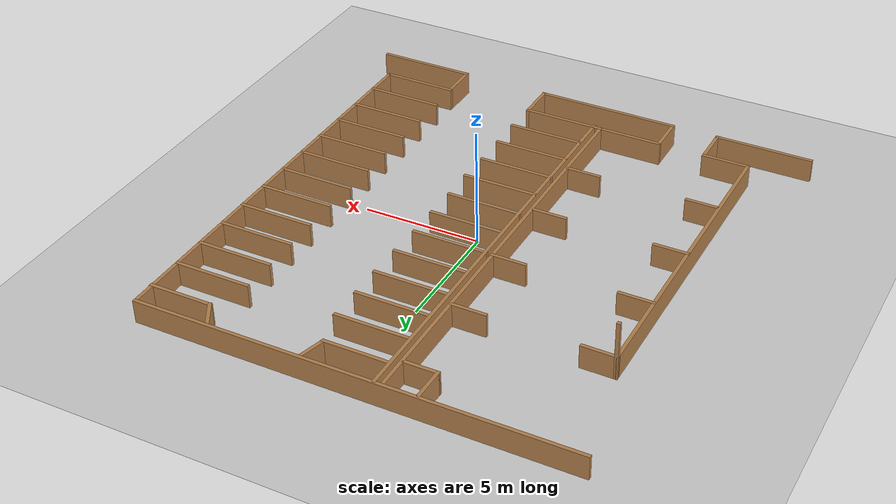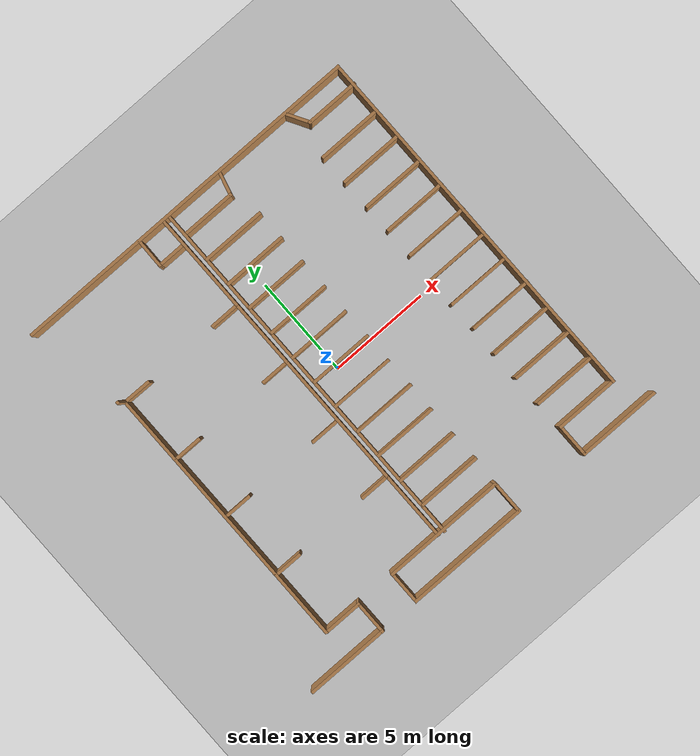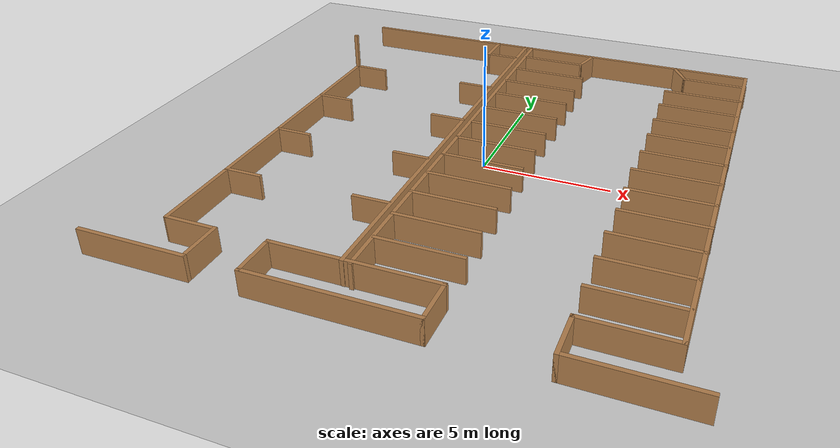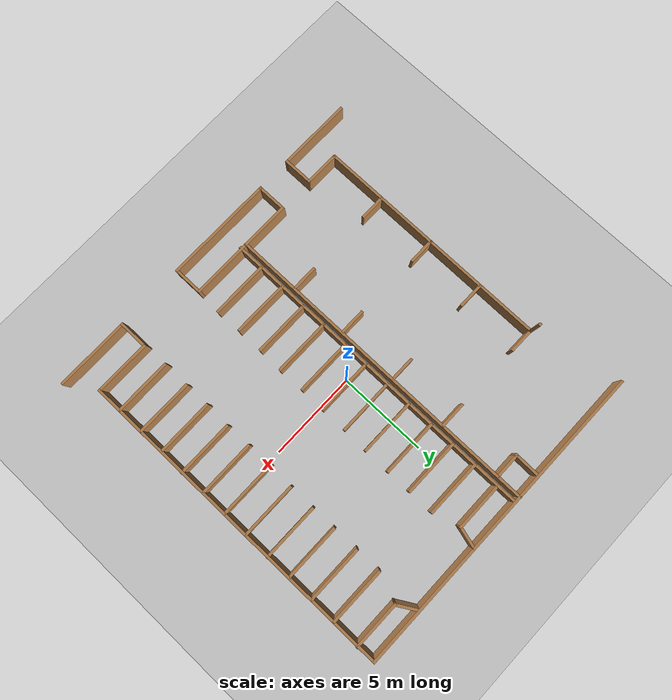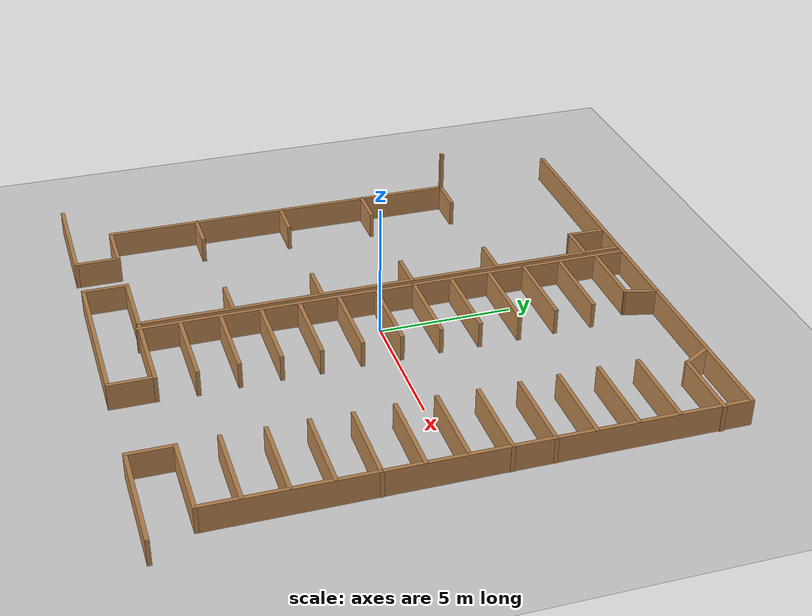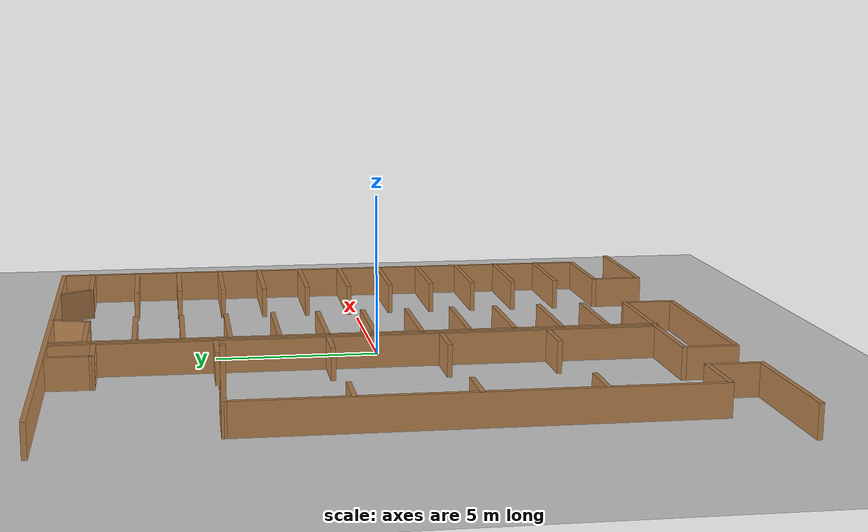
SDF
<sdf version='1.6'>
  <world name='default'>
    <light name='sun' type='directional'>
      <cast_shadows>1</cast_shadows>
      <pose frame=''>0 0 10 0 -0 0</pose>
      <diffuse>0.8 0.8 0.8 1</diffuse>
      <specular>0.1 0.1 0.1 1</specular>
      <attenuation>
        <range>1000</range>
        <constant>0.9</constant>
        <linear>0.01</linear>
        <quadratic>0.001</quadratic>
      </attenuation>
      <direction>-0.5 0.5 -1</direction>
    </light>
    <model name='ground_plane'>
      <static>1</static>
      <link name='link'>
        <collision name='collision'>
          <geometry>
            <plane>
              <normal>0 0 1</normal>
              <size>100 100</size>
            </plane>
          </geometry>
          <surface>
            <friction>
              <ode>
                <mu>100</mu>
                <mu2>50</mu2>
              </ode>
            </friction>
            <bounce/>
            <contact>
              <ode/>
            </contact>
          </surface>
          <max_contacts>10</max_contacts>
        </collision>
        <visual name='visual'>
          <cast_shadows>0</cast_shadows>
          <geometry>
            <plane>
              <normal>0 0 1</normal>
              <size>25 25</size>
            </plane>
          </geometry>
          <material>
            <script>
              <uri>file://media/materials/scripts/gazebo.material</uri>
              <name>Gazebo/Grey</name>
            </script>
          </material>
        </visual>
        <velocity_decay>
          <linear>0</linear>
          <angular>0</angular>
        </velocity_decay>
        <self_collide>0</self_collide>
        <kinematic>0</kinematic>
        <gravity>1</gravity>
      </link>
      <link name='camera_link'>
				<pose>0 0 20 0 1.57 1.57</pose> <!-- camera placed at a heigth of 16 feet-->
				<inertial>
					<mass>0.1</mass>
					<inertia>
						<ixx>1</ixx>
						<ixy>0</ixy>
						<ixz>0</ixz>
						<iyy>1</iyy>
						<iyz>0</iyz>
						<izz>1</izz>
					</inertia>
				</inertial>
				<collision name='collision'>
					<geometry>
						<box>
							<size>0.001 0.001 0.001</size>
						</box>
					</geometry>
					<max_contacts>10</max_contacts>
					<surface>
						<bounce/>
						<friction>
							<ode/>
						</friction>
						<contact>
							<ode/>
						</contact>
					</surface>
				</collision>
				<visual name='visual'>
					<geometry>
						<box>
							<size>0.001 0.001 0.001</size>
						</box>
					</geometry>
				</visual>
				<sensor type='camera' name='camera'>
					<camera name='overhead_cam'>
						<horizontal_fov>1.0</horizontal_fov>
						<image>
							<width>1280</width>
							<height>1280</height>
						</image>
						<clip>
							<near>0.1</near>
							<far>25</far>
						</clip>

					</camera>

					<plugin name='camera_control' filename='libgazebo_ros_camera.so'>
						<alwaysOn>true</alwaysOn>
						<updateRate>0</updateRate>
						<cameraName>gazebo/overhead_cam</cameraName>
						<imageTopicName>overhead_image</imageTopicName>
						<cameraInfoTopicName>camera_info</cameraInfoTopicName>
						<frameName>overhead_cam_frame</frameName>
					</plugin>
					<always_on>1</always_on>
					<update_rate>30</update_rate>
					<visualize>0</visualize>

				</sensor>

				<gravity>1</gravity>
			</link>
    </model>
    <model name='Parking_Lot_Final'>
      <pose frame=''>-0.2395 -0.024499 0 0 -0 0</pose>
      <link name='Wall_0'>
        <collision name='Wall_0_Collision'>
          <geometry>
            <box>
              <size>18.25 0.15 1</size>
            </box>
          </geometry>
          <pose frame=''>0 0 0.5 0 -0 0</pose>
        </collision>
        <visual name='Wall_0_Visual'>
          <pose frame=''>0 0 0.5 0 -0 0</pose>
          <geometry>
            <box>
              <size>18.25 0.15 1</size>
            </box>
          </geometry>
          <material>
            <script>
              <uri>file://media/materials/scripts/gazebo.material</uri>
              <name>Gazebo/Wood</name>
            </script>
            <ambient>1 1 1 1</ambient>
          </material>
        </visual>
        <pose frame=''>0.0365 10.1055 0 0 -0 0</pose>
      </link>
      <link name='Wall_1'>
        <collision name='Wall_1_Collision'>
          <geometry>
            <box>
              <size>18.75 0.15 1</size>
            </box>
          </geometry>
          <pose frame=''>0 0 0.5 0 -0 0</pose>
        </collision>
        <visual name='Wall_1_Visual'>
          <pose frame=''>0 0 0.5 0 -0 0</pose>
          <geometry>
            <box>
              <size>18.75 0.15 1</size>
            </box>
          </geometry>
          <material>
            <script>
              <uri>file://media/materials/scripts/gazebo.material</uri>
              <name>Gazebo/Wood</name>
            </script>
            <ambient>1 1 1 1</ambient>
          </material>
        </visual>
        <pose frame=''>9.0865 0.805499 0 0 0 -1.5708</pose>
      </link>
      <link name='Wall_10'>
        <collision name='Wall_10_Collision'>
          <geometry>
            <box>
              <size>4.25 0.15 1</size>
            </box>
          </geometry>
          <pose frame=''>0 0 0.5 0 -0 0</pose>
        </collision>
        <visual name='Wall_10_Visual'>
          <pose frame=''>0 0 0.5 0 -0 0</pose>
          <geometry>
            <box>
              <size>4.25 0.15 1</size>
            </box>
          </geometry>
          <material>
            <script>
              <uri>file://media/materials/scripts/gazebo.material</uri>
              <name>Gazebo/Wood</name>
            </script>
            <ambient>1 1 1 1</ambient>
          </material>
        </visual>
        <pose frame=''>-8.0365 -10.1055 0 0 -0 3.14159</pose>
      </link>
      <link name='Wall_102'>
        <collision name='Wall_102_Collision'>
          <geometry>
            <box>
              <size>2.75 0.15 1</size>
            </box>
          </geometry>
          <pose frame=''>0 0 0.5 0 -0 0</pose>
        </collision>
        <visual name='Wall_102_Visual'>
          <pose frame=''>0 0 0.5 0 -0 0</pose>
          <geometry>
            <box>
              <size>2.75 0.15 1</size>
            </box>
          </geometry>
          <material>
            <script>
              <uri>file://media/materials/scripts/gazebo.material</uri>
              <name>Gazebo/Wood</name>
            </script>
            <ambient>1 1 1 1</ambient>
          </material>
        </visual>
        <pose frame=''>7.8255 9.0675 0 0 -0 0</pose>
      </link>
      <link name='Wall_104'>
        <collision name='Wall_104_Collision'>
          <geometry>
            <box>
              <size>3.25 0.15 1</size>
            </box>
          </geometry>
          <pose frame=''>0 0 0.5 0 -0 0</pose>
        </collision>
        <visual name='Wall_104_Visual'>
          <pose frame=''>0 0 0.5 0 -0 0</pose>
          <geometry>
            <box>
              <size>3.25 0.15 1</size>
            </box>
          </geometry>
          <material>
            <script>
              <uri>file://media/materials/scripts/gazebo.material</uri>
              <name>Gazebo/Wood</name>
            </script>
            <ambient>1 1 1 1</ambient>
          </material>
        </visual>
        <pose frame=''>7.5035 7.5095 0 0 -0 3.14159</pose>
      </link>
      <link name='Wall_108'>
        <collision name='Wall_108_Collision'>
          <geometry>
            <box>
              <size>3.25 0.15 1</size>
            </box>
          </geometry>
          <pose frame=''>0 0 0.5 0 -0 0</pose>
        </collision>
        <visual name='Wall_108_Visual'>
          <pose frame=''>0 0 0.5 0 -0 0</pose>
          <geometry>
            <box>
              <size>3.25 0.15 1</size>
            </box>
          </geometry>
          <material>
            <script>
              <uri>file://media/materials/scripts/gazebo.material</uri>
              <name>Gazebo/Wood</name>
            </script>
            <ambient>1 1 1 1</ambient>
          </material>
        </visual>
        <pose frame=''>7.5085 6.0475 0 0 -0 0</pose>
      </link>
      <link name='Wall_110'>
        <collision name='Wall_110_Collision'>
          <geometry>
            <box>
              <size>3.25 0.15 1</size>
            </box>
          </geometry>
          <pose frame=''>0 0 0.5 0 -0 0</pose>
        </collision>
        <visual name='Wall_110_Visual'>
          <pose frame=''>0 0 0.5 0 -0 0</pose>
          <geometry>
            <box>
              <size>3.25 0.15 1</size>
            </box>
          </geometry>
          <material>
            <script>
              <uri>file://media/materials/scripts/gazebo.material</uri>
              <name>Gazebo/Wood</name>
            </script>
            <ambient>1 1 1 1</ambient>
          </material>
        </visual>
        <pose frame=''>7.5305 4.5715 0 0 -0 0</pose>
      </link>
      <link name='Wall_112'>
        <collision name='Wall_112_Collision'>
          <geometry>
            <box>
              <size>3.25 0.15 1</size>
            </box>
          </geometry>
          <pose frame=''>0 0 0.5 0 -0 0</pose>
        </collision>
        <visual name='Wall_112_Visual'>
          <pose frame=''>0 0 0.5 0 -0 0</pose>
          <geometry>
            <box>
              <size>3.25 0.15 1</size>
            </box>
          </geometry>
          <material>
            <script>
              <uri>file://media/materials/scripts/gazebo.material</uri>
              <name>Gazebo/Wood</name>
            </script>
            <ambient>1 1 1 1</ambient>
          </material>
        </visual>
        <pose frame=''>7.5475 3.1615 0 0 -0 0</pose>
      </link>
      <link name='Wall_114'>
        <collision name='Wall_114_Collision'>
          <geometry>
            <box>
              <size>3.25 0.15 1</size>
            </box>
          </geometry>
          <pose frame=''>0 0 0.5 0 -0 0</pose>
        </collision>
        <visual name='Wall_114_Visual'>
          <pose frame=''>0 0 0.5 0 -0 0</pose>
          <geometry>
            <box>
              <size>3.25 0.15 1</size>
            </box>
          </geometry>
          <material>
            <script>
              <uri>file://media/materials/scripts/gazebo.material</uri>
              <name>Gazebo/Wood</name>
            </script>
            <ambient>1 1 1 1</ambient>
          </material>
        </visual>
        <pose frame=''>7.5475 1.6825 0 0 -0 0</pose>
      </link>
      <link name='Wall_116'>
        <collision name='Wall_116_Collision'>
          <geometry>
            <box>
              <size>3.25 0.15 1</size>
            </box>
          </geometry>
          <pose frame=''>0 0 0.5 0 -0 0</pose>
        </collision>
        <visual name='Wall_116_Visual'>
          <pose frame=''>0 0 0.5 0 -0 0</pose>
          <geometry>
            <box>
              <size>3.25 0.15 1</size>
            </box>
          </geometry>
          <material>
            <script>
              <uri>file://media/materials/scripts/gazebo.material</uri>
              <name>Gazebo/Wood</name>
            </script>
            <ambient>1 1 1 1</ambient>
          </material>
        </visual>
        <pose frame=''>7.4785 0.240499 0 0 -0 0</pose>
      </link>
      <link name='Wall_118'>
        <collision name='Wall_118_Collision'>
          <geometry>
            <box>
              <size>3.25 0.15 1</size>
            </box>
          </geometry>
          <pose frame=''>0 0 0.5 0 -0 0</pose>
        </collision>
        <visual name='Wall_118_Visual'>
          <pose frame=''>0 0 0.5 0 -0 0</pose>
          <geometry>
            <box>
              <size>3.25 0.15 1</size>
            </box>
          </geometry>
          <material>
            <script>
              <uri>file://media/materials/scripts/gazebo.material</uri>
              <name>Gazebo/Wood</name>
            </script>
            <ambient>1 1 1 1</ambient>
          </material>
        </visual>
        <pose frame=''>7.5175 -1.2075 0 0 -0 0</pose>
      </link>
      <link name='Wall_120'>
        <collision name='Wall_120_Collision'>
          <geometry>
            <box>
              <size>3.25 0.15 1</size>
            </box>
          </geometry>
          <pose frame=''>0 0 0.5 0 -0 0</pose>
        </collision>
        <visual name='Wall_120_Visual'>
          <pose frame=''>0 0 0.5 0 -0 0</pose>
          <geometry>
            <box>
              <size>3.25 0.15 1</size>
            </box>
          </geometry>
          <material>
            <script>
              <uri>file://media/materials/scripts/gazebo.material</uri>
              <name>Gazebo/Wood</name>
            </script>
            <ambient>1 1 1 1</ambient>
          </material>
        </visual>
        <pose frame=''>7.5535 -2.6525 0 0 -0 0</pose>
      </link>
      <link name='Wall_122'>
        <collision name='Wall_122_Collision'>
          <geometry>
            <box>
              <size>3.25 0.15 1</size>
            </box>
          </geometry>
          <pose frame=''>0 0 0.5 0 -0 0</pose>
        </collision>
        <visual name='Wall_122_Visual'>
          <pose frame=''>0 0 0.5 0 -0 0</pose>
          <geometry>
            <box>
              <size>3.25 0.15 1</size>
            </box>
          </geometry>
          <material>
            <script>
              <uri>file://media/materials/scripts/gazebo.material</uri>
              <name>Gazebo/Wood</name>
            </script>
            <ambient>1 1 1 1</ambient>
          </material>
        </visual>
        <pose frame=''>7.5015 -4.1085 0 0 -0 0</pose>
      </link>
      <link name='Wall_125'>
        <collision name='Wall_125_Collision'>
          <geometry>
            <box>
              <size>3.25 0.15 1</size>
            </box>
          </geometry>
          <pose frame=''>0 0 0.5 0 -0 0</pose>
        </collision>
        <visual name='Wall_125_Visual'>
          <pose frame=''>0 0 0.5 0 -0 0</pose>
          <geometry>
            <box>
              <size>3.25 0.15 1</size>
            </box>
          </geometry>
          <material>
            <script>
              <uri>file://media/materials/scripts/gazebo.material</uri>
              <name>Gazebo/Wood</name>
            </script>
            <ambient>1 1 1 1</ambient>
          </material>
        </visual>
        <pose frame=''>7.5105 -5.5515 0 0 -0 0</pose>
      </link>
      <link name='Wall_127'>
        <collision name='Wall_127_Collision'>
          <geometry>
            <box>
              <size>3.25 0.15 1</size>
            </box>
          </geometry>
          <pose frame=''>0 0 0.5 0 -0 0</pose>
        </collision>
        <visual name='Wall_127_Visual'>
          <pose frame=''>0 0 0.5 0 -0 0</pose>
          <geometry>
            <box>
              <size>3.25 0.15 1</size>
            </box>
          </geometry>
          <material>
            <script>
              <uri>file://media/materials/scripts/gazebo.material</uri>
              <name>Gazebo/Wood</name>
            </script>
            <ambient>1 1 1 1</ambient>
          </material>
        </visual>
        <pose frame=''>7.4955 -7.0615 0 0 -0 0</pose>
      </link>
      <link name='Wall_129'>
        <collision name='Wall_129_Collision'>
          <geometry>
            <box>
              <size>1.5 0.15 1</size>
            </box>
          </geometry>
          <pose frame=''>0 0 0.5 0 -0 0</pose>
        </collision>
        <visual name='Wall_129_Visual'>
          <pose frame=''>0 0 0.5 0 -0 0</pose>
          <geometry>
            <box>
              <size>1.5 0.15 1</size>
            </box>
          </geometry>
          <material>
            <script>
              <uri>file://media/materials/scripts/gazebo.material</uri>
              <name>Gazebo/Wood</name>
            </script>
            <ambient>1 1 1 1</ambient>
          </material>
        </visual>
        <pose frame=''>-2.694 9.3545 0 0 0 -1.58783</pose>
      </link>
      <link name='Wall_130'>
        <collision name='Wall_130_Collision'>
          <geometry>
            <box>
              <size>1.5 0.15 1</size>
            </box>
          </geometry>
          <pose frame=''>0 0 0.5 0 -0 0</pose>
        </collision>
        <visual name='Wall_130_Visual'>
          <pose frame=''>0 0 0.5 0 -0 0</pose>
          <geometry>
            <box>
              <size>1.5 0.15 1</size>
            </box>
          </geometry>
          <material>
            <script>
              <uri>file://media/materials/scripts/gazebo.material</uri>
              <name>Gazebo/Wood</name>
            </script>
            <ambient>1 1 1 1</ambient>
          </material>
        </visual>
        <pose frame=''>-2.0305 8.6795 0 0 -0 0</pose>
      </link>
      <link name='Wall_18'>
        <collision name='Wall_18_Collision'>
          <geometry>
            <box>
              <size>1.5 0.15 1</size>
            </box>
          </geometry>
          <pose frame=''>0 0 0.5 0 -0 0</pose>
        </collision>
        <visual name='Wall_18_Visual'>
          <pose frame=''>0 0 0.5 0 -0 0</pose>
          <geometry>
            <box>
              <size>1.5 0.15 1</size>
            </box>
          </geometry>
          <material>
            <script>
              <uri>file://media/materials/scripts/gazebo.material</uri>
              <name>Gazebo/Wood</name>
            </script>
            <ambient>1 1 1 1</ambient>
          </material>
        </visual>
        <pose frame=''>-7.1795 1.7075 0 0 -0 0</pose>
      </link>
      <link name='Wall_2'>
        <collision name='Wall_2_Collision'>
          <geometry>
            <box>
              <size>3.25 0.15 1</size>
            </box>
          </geometry>
          <pose frame=''>0 0 0.5 0 -0 0</pose>
        </collision>
        <visual name='Wall_2_Visual'>
          <pose frame=''>0 0 0.5 0 -0 0</pose>
          <geometry>
            <box>
              <size>3.25 0.15 1</size>
            </box>
          </geometry>
          <material>
            <script>
              <uri>file://media/materials/scripts/gazebo.material</uri>
              <name>Gazebo/Wood</name>
            </script>
            <ambient>1 1 1 1</ambient>
          </material>
        </visual>
        <pose frame=''>7.5365 -8.4945 0 0 -0 3.14159</pose>
      </link>
      <link name='Wall_20'>
        <collision name='Wall_20_Collision'>
          <geometry>
            <box>
              <size>1.5 0.15 1</size>
            </box>
          </geometry>
          <pose frame=''>0 0 0.5 0 -0 0</pose>
        </collision>
        <visual name='Wall_20_Visual'>
          <pose frame=''>0 0 0.5 0 -0 0</pose>
          <geometry>
            <box>
              <size>1.5 0.15 1</size>
            </box>
          </geometry>
          <material>
            <script>
              <uri>file://media/materials/scripts/gazebo.material</uri>
              <name>Gazebo/Wood</name>
            </script>
            <ambient>1 1 1 1</ambient>
          </material>
        </visual>
        <pose frame=''>-7.1985 -1.6895 0 0 -0 0</pose>
      </link>
      <link name='Wall_22'>
        <collision name='Wall_22_Collision'>
          <geometry>
            <box>
              <size>1.5 0.15 1</size>
            </box>
          </geometry>
          <pose frame=''>0 0 0.5 0 -0 0</pose>
        </collision>
        <visual name='Wall_22_Visual'>
          <pose frame=''>0 0 0.5 0 -0 0</pose>
          <geometry>
            <box>
              <size>1.5 0.15 1</size>
            </box>
          </geometry>
          <material>
            <script>
              <uri>file://media/materials/scripts/gazebo.material</uri>
              <name>Gazebo/Wood</name>
            </script>
            <ambient>1 1 1 1</ambient>
          </material>
        </visual>
        <pose frame=''>-7.2125 -5.1185 0 0 -0 0</pose>
      </link>
      <link name='Wall_3'>
        <collision name='Wall_3_Collision'>
          <geometry>
            <box>
              <size>1.75 0.15 1</size>
            </box>
          </geometry>
          <pose frame=''>0 0 0.5 0 -0 0</pose>
        </collision>
        <visual name='Wall_3_Visual'>
          <pose frame=''>0 0 0.5 0 -0 0</pose>
          <geometry>
            <box>
              <size>1.75 0.15 1</size>
            </box>
          </geometry>
          <material>
            <script>
              <uri>file://media/materials/scripts/gazebo.material</uri>
              <name>Gazebo/Wood</name>
            </script>
            <ambient>1 1 1 1</ambient>
          </material>
        </visual>
        <pose frame=''>5.9865 -9.2945 0 0 0 -1.5708</pose>
      </link>
      <link name='Wall_35'>
        <collision name='Wall_35_Collision'>
          <geometry>
            <box>
              <size>0.15 0.15 2.5</size>
            </box>
          </geometry>
          <pose frame=''>0 0 1.25 0 -0 0</pose>
        </collision>
        <visual name='Wall_35_Visual'>
          <pose frame=''>0 0 1.25 0 -0 0</pose>
          <geometry>
            <box>
              <size>0.15 0.15 2.5</size>
            </box>
          </geometry>
          <material>
            <script>
              <uri>file://media/materials/scripts/gazebo.material</uri>
              <name>Gazebo/Wood</name>
            </script>
            <ambient>1 1 1 1</ambient>
          </material>
        </visual>
        <pose frame=''>-7.87467 5.11657 0 0 -0 0</pose>
      </link>
      <link name='Wall_37'>
        <collision name='Wall_37_Collision'>
          <geometry>
            <box>
              <size>1.75 0.15 1</size>
            </box>
          </geometry>
          <pose frame=''>0 0 0.5 0 -0 0</pose>
        </collision>
        <visual name='Wall_37_Visual'>
          <pose frame=''>0 0 0.5 0 -0 0</pose>
          <geometry>
            <box>
              <size>1.75 0.15 1</size>
            </box>
          </geometry>
          <material>
            <script>
              <uri>file://media/materials/scripts/gazebo.material</uri>
              <name>Gazebo/Wood</name>
            </script>
            <ambient>1 1 1 1</ambient>
          </material>
        </visual>
        <pose frame=''>-3.9765 -9.2905 0 0 0 -1.5708</pose>
      </link>
      <link name='Wall_38'>
        <collision name='Wall_38_Collision'>
          <geometry>
            <box>
              <size>6.25 0.15 1</size>
            </box>
          </geometry>
          <pose frame=''>0 0 0.5 0 -0 0</pose>
        </collision>
        <visual name='Wall_38_Visual'>
          <pose frame=''>0 0 0.5 0 -0 0</pose>
          <geometry>
            <box>
              <size>6.25 0.15 1</size>
            </box>
          </geometry>
          <material>
            <script>
              <uri>file://media/materials/scripts/gazebo.material</uri>
              <name>Gazebo/Wood</name>
            </script>
            <ambient>1 1 1 1</ambient>
          </material>
        </visual>
        <pose frame=''>-0.9265 -10.0905 0 0 -0 0</pose>
      </link>
      <link name='Wall_4'>
        <collision name='Wall_4_Collision'>
          <geometry>
            <box>
              <size>4.25 0.15 1</size>
            </box>
          </geometry>
          <pose frame=''>0 0 0.5 0 -0 0</pose>
        </collision>
        <visual name='Wall_4_Visual'>
          <pose frame=''>0 0 0.5 0 -0 0</pose>
          <geometry>
            <box>
              <size>4.25 0.15 1</size>
            </box>
          </geometry>
          <material>
            <script>
              <uri>file://media/materials/scripts/gazebo.material</uri>
              <name>Gazebo/Wood</name>
            </script>
            <ambient>1 1 1 1</ambient>
          </material>
        </visual>
        <pose frame=''>8.0365 -10.0945 0 0 -0 0</pose>
      </link>
      <link name='Wall_41'>
        <collision name='Wall_41_Collision'>
          <geometry>
            <box>
              <size>1.75 0.15 1</size>
            </box>
          </geometry>
          <pose frame=''>0 0 0.5 0 -0 0</pose>
        </collision>
        <visual name='Wall_41_Visual'>
          <pose frame=''>0 0 0.5 0 -0 0</pose>
          <geometry>
            <box>
              <size>1.75 0.15 1</size>
            </box>
          </geometry>
          <material>
            <script>
              <uri>file://media/materials/scripts/gazebo.material</uri>
              <name>Gazebo/Wood</name>
            </script>
            <ambient>1 1 1 1</ambient>
          </material>
        </visual>
        <pose frame=''>2.1235 -9.2905 0 0 -0 1.5708</pose>
      </link>
      <link name='Wall_42'>
        <collision name='Wall_42_Collision'>
          <geometry>
            <box>
              <size>6.25 0.15 1</size>
            </box>
          </geometry>
          <pose frame=''>0 0 0.5 0 -0 0</pose>
        </collision>
        <visual name='Wall_42_Visual'>
          <pose frame=''>0 0 0.5 0 -0 0</pose>
          <geometry>
            <box>
              <size>6.25 0.15 1</size>
            </box>
          </geometry>
          <material>
            <script>
              <uri>file://media/materials/scripts/gazebo.material</uri>
              <name>Gazebo/Wood</name>
            </script>
            <ambient>1 1 1 1</ambient>
          </material>
        </visual>
        <pose frame=''>-0.9265 -8.4905 0 0 -0 3.14159</pose>
      </link>
      <link name='Wall_44'>
        <collision name='Wall_44_Collision'>
          <geometry>
            <box>
              <size>1.5 0.15 1</size>
            </box>
          </geometry>
          <pose frame=''>0 0 0.5 0 -0 0</pose>
        </collision>
        <visual name='Wall_44_Visual'>
          <pose frame=''>0 0 0.5 0 -0 0</pose>
          <geometry>
            <box>
              <size>1.5 0.15 1</size>
            </box>
          </geometry>
          <material>
            <script>
              <uri>file://media/materials/scripts/gazebo.material</uri>
              <name>Gazebo/Wood</name>
            </script>
            <ambient>1 1 1 1</ambient>
          </material>
        </visual>
        <pose frame=''>-2.0375 -5.0665 0 0 -0 3.14159</pose>
      </link>
      <link name='Wall_48'>
        <collision name='Wall_48_Collision'>
          <geometry>
            <box>
              <size>1.5 0.15 1</size>
            </box>
          </geometry>
          <pose frame=''>0 0 0.5 0 -0 0</pose>
        </collision>
        <visual name='Wall_48_Visual'>
          <pose frame=''>0 0 0.5 0 -0 0</pose>
          <geometry>
            <box>
              <size>1.5 0.15 1</size>
            </box>
          </geometry>
          <material>
            <script>
              <uri>file://media/materials/scripts/gazebo.material</uri>
              <name>Gazebo/Wood</name>
            </script>
            <ambient>1 1 1 1</ambient>
          </material>
        </visual>
        <pose frame=''>-2.0625 -1.7385 0 0 -0 3.14159</pose>
      </link>
      <link name='Wall_53'>
        <collision name='Wall_53_Collision'>
          <geometry>
            <box>
              <size>1.5 0.15 1</size>
            </box>
          </geometry>
          <pose frame=''>0 0 0.5 0 -0 0</pose>
        </collision>
        <visual name='Wall_53_Visual'>
          <pose frame=''>0 0 0.5 0 -0 0</pose>
          <geometry>
            <box>
              <size>1.5 0.15 1</size>
            </box>
          </geometry>
          <material>
            <script>
              <uri>file://media/materials/scripts/gazebo.material</uri>
              <name>Gazebo/Wood</name>
            </script>
            <ambient>1 1 1 1</ambient>
          </material>
        </visual>
        <pose frame=''>-1.9715 1.7145 0 0 -0 3.14159</pose>
      </link>
      <link name='Wall_60'>
        <collision name='Wall_60_Collision'>
          <geometry>
            <box>
              <size>1.501 0.15 1</size>
            </box>
          </geometry>
          <pose frame=''>0 0 0.5 0 -0 0</pose>
        </collision>
        <visual name='Wall_60_Visual'>
          <pose frame=''>0 0 0.5 0 -0 0</pose>
          <geometry>
            <box>
              <size>1.501 0.15 1</size>
            </box>
          </geometry>
          <material>
            <script>
              <uri>file://media/materials/scripts/gazebo.material</uri>
              <name>Gazebo/Wood</name>
            </script>
            <ambient>1 1 1 1</ambient>
          </material>
        </visual>
        <pose frame=''>-7.21 5.1105 0 0 -0 3.13271</pose>
      </link>
      <link name='Wall_61'>
        <collision name='Wall_61_Collision'>
          <geometry>
            <box>
              <size>13.7532 0.15 1</size>
            </box>
          </geometry>
          <pose frame=''>0 0 0.5 0 -0 0</pose>
        </collision>
        <visual name='Wall_61_Visual'>
          <pose frame=''>0 0 0.5 0 -0 0</pose>
          <geometry>
            <box>
              <size>13.7532 0.15 1</size>
            </box>
          </geometry>
          <material>
            <script>
              <uri>file://media/materials/scripts/gazebo.material</uri>
              <name>Gazebo/Wood</name>
            </script>
            <ambient>1 1 1 1</ambient>
          </material>
        </visual>
        <pose frame=''>-7.8935 -1.685 0 0 0 -1.57197</pose>
      </link>
      <link name='Wall_65'>
        <collision name='Wall_65_Collision'>
          <geometry>
            <box>
              <size>3.25 0.15 1</size>
            </box>
          </geometry>
          <pose frame=''>0 0 0.5 0 -0 0</pose>
        </collision>
        <visual name='Wall_65_Visual'>
          <pose frame=''>0 0 0.5 0 -0 0</pose>
          <geometry>
            <box>
              <size>3.25 0.15 1</size>
            </box>
          </geometry>
          <material>
            <script>
              <uri>file://media/materials/scripts/gazebo.material</uri>
              <name>Gazebo/Wood</name>
            </script>
            <ambient>1 1 1 1</ambient>
          </material>
        </visual>
        <pose frame=''>0.5985 7.4965 0 0 -0 0</pose>
      </link>
      <link name='Wall_67'>
        <collision name='Wall_67_Collision'>
          <geometry>
            <box>
              <size>3.25 0.15 1</size>
            </box>
          </geometry>
          <pose frame=''>0 0 0.5 0 -0 0</pose>
        </collision>
        <visual name='Wall_67_Visual'>
          <pose frame=''>0 0 0.5 0 -0 0</pose>
          <geometry>
            <box>
              <size>3.25 0.15 1</size>
            </box>
          </geometry>
          <material>
            <script>
              <uri>file://media/materials/scripts/gazebo.material</uri>
              <name>Gazebo/Wood</name>
            </script>
            <ambient>1 1 1 1</ambient>
          </material>
        </visual>
        <pose frame=''>0.5985 6.0445 0 0 -0 0</pose>
      </link>
      <link name='Wall_69'>
        <collision name='Wall_69_Collision'>
          <geometry>
            <box>
              <size>3.25 0.15 1</size>
            </box>
          </geometry>
          <pose frame=''>0 0 0.5 0 -0 0</pose>
        </collision>
        <visual name='Wall_69_Visual'>
          <pose frame=''>0 0 0.5 0 -0 0</pose>
          <geometry>
            <box>
              <size>3.25 0.15 1</size>
            </box>
          </geometry>
          <material>
            <script>
              <uri>file://media/materials/scripts/gazebo.material</uri>
              <name>Gazebo/Wood</name>
            </script>
            <ambient>1 1 1 1</ambient>
          </material>
        </visual>
        <pose frame=''>0.6185 4.6325 0 0 -0 0</pose>
      </link>
      <link name='Wall_71'>
        <collision name='Wall_71_Collision'>
          <geometry>
            <box>
              <size>3.25 0.15 1</size>
            </box>
          </geometry>
          <pose frame=''>0 0 0.5 0 -0 0</pose>
        </collision>
        <visual name='Wall_71_Visual'>
          <pose frame=''>0 0 0.5 0 -0 0</pose>
          <geometry>
            <box>
              <size>3.25 0.15 1</size>
            </box>
          </geometry>
          <material>
            <script>
              <uri>file://media/materials/scripts/gazebo.material</uri>
              <name>Gazebo/Wood</name>
            </script>
            <ambient>1 1 1 1</ambient>
          </material>
        </visual>
        <pose frame=''>0.6185 3.1405 0 0 -0 0</pose>
      </link>
      <link name='Wall_73'>
        <collision name='Wall_73_Collision'>
          <geometry>
            <box>
              <size>3.25 0.15 1</size>
            </box>
          </geometry>
          <pose frame=''>0 0 0.5 0 -0 0</pose>
        </collision>
        <visual name='Wall_73_Visual'>
          <pose frame=''>0 0 0.5 0 -0 0</pose>
          <geometry>
            <box>
              <size>3.25 0.15 1</size>
            </box>
          </geometry>
          <material>
            <script>
              <uri>file://media/materials/scripts/gazebo.material</uri>
              <name>Gazebo/Wood</name>
            </script>
            <ambient>1 1 1 1</ambient>
          </material>
        </visual>
        <pose frame=''>0.5785 1.6895 0 0 -0 0</pose>
      </link>
      <link name='Wall_75'>
        <collision name='Wall_75_Collision'>
          <geometry>
            <box>
              <size>3.25 0.15 1</size>
            </box>
          </geometry>
          <pose frame=''>0 0 0.5 0 -0 0</pose>
        </collision>
        <visual name='Wall_75_Visual'>
          <pose frame=''>0 0 0.5 0 -0 0</pose>
          <geometry>
            <box>
              <size>3.25 0.15 1</size>
            </box>
          </geometry>
          <material>
            <script>
              <uri>file://media/materials/scripts/gazebo.material</uri>
              <name>Gazebo/Wood</name>
            </script>
            <ambient>1 1 1 1</ambient>
          </material>
        </visual>
        <pose frame=''>0.5985 0.228499 0 0 -0 0</pose>
      </link>
      <link name='Wall_77'>
        <collision name='Wall_77_Collision'>
          <geometry>
            <box>
              <size>3.25 0.15 1</size>
            </box>
          </geometry>
          <pose frame=''>0 0 0.5 0 -0 0</pose>
        </collision>
        <visual name='Wall_77_Visual'>
          <pose frame=''>0 0 0.5 0 -0 0</pose>
          <geometry>
            <box>
              <size>3.25 0.15 1</size>
            </box>
          </geometry>
          <material>
            <script>
              <uri>file://media/materials/scripts/gazebo.material</uri>
              <name>Gazebo/Wood</name>
            </script>
            <ambient>1 1 1 1</ambient>
          </material>
        </visual>
        <pose frame=''>0.5815 -1.2065 0 0 -0 0</pose>
      </link>
      <link name='Wall_79'>
        <collision name='Wall_79_Collision'>
          <geometry>
            <box>
              <size>3.25 0.15 1</size>
            </box>
          </geometry>
          <pose frame=''>0 0 0.5 0 -0 0</pose>
        </collision>
        <visual name='Wall_79_Visual'>
          <pose frame=''>0 0 0.5 0 -0 0</pose>
          <geometry>
            <box>
              <size>3.25 0.15 1</size>
            </box>
          </geometry>
          <material>
            <script>
              <uri>file://media/materials/scripts/gazebo.material</uri>
              <name>Gazebo/Wood</name>
            </script>
            <ambient>1 1 1 1</ambient>
          </material>
        </visual>
        <pose frame=''>0.6155 -2.6935 0 0 -0 0</pose>
      </link>
      <link name='Wall_8'>
        <collision name='Wall_8_Collision'>
          <geometry>
            <box>
              <size>2 0.15 1</size>
            </box>
          </geometry>
          <pose frame=''>0 0 0.5 0 -0 0</pose>
        </collision>
        <visual name='Wall_8_Visual'>
          <pose frame=''>0 0 0.5 0 -0 0</pose>
          <geometry>
            <box>
              <size>2 0.15 1</size>
            </box>
          </geometry>
          <material>
            <script>
              <uri>file://media/materials/scripts/gazebo.material</uri>
              <name>Gazebo/Wood</name>
            </script>
            <ambient>1 1 1 1</ambient>
          </material>
        </visual>
        <pose frame=''>-6.9115 -8.5055 0 0 -0 0</pose>
      </link>
      <link name='Wall_81'>
        <collision name='Wall_81_Collision'>
          <geometry>
            <box>
              <size>3.25 0.15 1</size>
            </box>
          </geometry>
          <pose frame=''>0 0 0.5 0 -0 0</pose>
        </collision>
        <visual name='Wall_81_Visual'>
          <pose frame=''>0 0 0.5 0 -0 0</pose>
          <geometry>
            <box>
              <size>3.25 0.15 1</size>
            </box>
          </geometry>
          <material>
            <script>
              <uri>file://media/materials/scripts/gazebo.material</uri>
              <name>Gazebo/Wood</name>
            </script>
            <ambient>1 1 1 1</ambient>
          </material>
        </visual>
        <pose frame=''>0.5815 -4.1115 0 0 -0 0</pose>
      </link>
      <link name='Wall_83'>
        <collision name='Wall_83_Collision'>
          <geometry>
            <box>
              <size>3.25 0.15 1</size>
            </box>
          </geometry>
          <pose frame=''>0 0 0.5 0 -0 0</pose>
        </collision>
        <visual name='Wall_83_Visual'>
          <pose frame=''>0 0 0.5 0 -0 0</pose>
          <geometry>
            <box>
              <size>3.25 0.15 1</size>
            </box>
          </geometry>
          <material>
            <script>
              <uri>file://media/materials/scripts/gazebo.material</uri>
              <name>Gazebo/Wood</name>
            </script>
            <ambient>1 1 1 1</ambient>
          </material>
        </visual>
        <pose frame=''>0.5915 -5.5985 0 0 -0 0</pose>
      </link>
      <link name='Wall_85'>
        <collision name='Wall_85_Collision'>
          <geometry>
            <box>
              <size>3.25 0.15 1</size>
            </box>
          </geometry>
          <pose frame=''>0 0 0.5 0 -0 0</pose>
        </collision>
        <visual name='Wall_85_Visual'>
          <pose frame=''>0 0 0.5 0 -0 0</pose>
          <geometry>
            <box>
              <size>3.25 0.15 1</size>
            </box>
          </geometry>
          <material>
            <script>
              <uri>file://media/materials/scripts/gazebo.material</uri>
              <name>Gazebo/Wood</name>
            </script>
            <ambient>1 1 1 1</ambient>
          </material>
        </visual>
        <pose frame=''>0.6375 -7.0625 0 0 -0 0</pose>
      </link>
      <link name='Wall_87'>
        <collision name='Wall_87_Collision'>
          <geometry>
            <box>
              <size>18.75 0.15 1</size>
            </box>
          </geometry>
          <pose frame=''>0 0 0.5 0 -0 0</pose>
        </collision>
        <visual name='Wall_87_Visual'>
          <pose frame=''>0 0 0.5 0 -0 0</pose>
          <geometry>
            <box>
              <size>18.75 0.15 1</size>
            </box>
          </geometry>
          <material>
            <script>
              <uri>file://media/materials/scripts/gazebo.material</uri>
              <name>Gazebo/Wood</name>
            </script>
            <ambient>1 1 1 1</ambient>
          </material>
        </visual>
        <pose frame=''>-0.9675 0.736499 0 0 0 -1.5708</pose>
      </link>
      <link name='Wall_89'>
        <collision name='Wall_89_Collision'>
          <geometry>
            <box>
              <size>18.75 0.15 1</size>
            </box>
          </geometry>
          <pose frame=''>0 0 0.5 0 -0 0</pose>
        </collision>
        <visual name='Wall_89_Visual'>
          <pose frame=''>0 0 0.5 0 -0 0</pose>
          <geometry>
            <box>
              <size>18.75 0.15 1</size>
            </box>
          </geometry>
          <material>
            <script>
              <uri>file://media/materials/scripts/gazebo.material</uri>
              <name>Gazebo/Wood</name>
            </script>
            <ambient>1 1 1 1</ambient>
          </material>
        </visual>
        <pose frame=''>-1.2925 0.793499 0 0 0 -1.5708</pose>
      </link>
      <link name='Wall_9'>
        <collision name='Wall_9_Collision'>
          <geometry>
            <box>
              <size>1.75 0.15 1</size>
            </box>
          </geometry>
          <pose frame=''>0 0 0.5 0 -0 0</pose>
        </collision>
        <visual name='Wall_9_Visual'>
          <pose frame=''>0 0 0.5 0 -0 0</pose>
          <geometry>
            <box>
              <size>1.75 0.15 1</size>
            </box>
          </geometry>
          <material>
            <script>
              <uri>file://media/materials/scripts/gazebo.material</uri>
              <name>Gazebo/Wood</name>
            </script>
            <ambient>1 1 1 1</ambient>
          </material>
        </visual>
        <pose frame=''>-5.9865 -9.3055 0 0 0 -1.5708</pose>
      </link>
      <link name='Wall_91'>
        <collision name='Wall_91_Collision'>
          <geometry>
            <box>
              <size>1.5 0.15 1</size>
            </box>
          </geometry>
          <pose frame=''>0 0 0.5 0 -0 0</pose>
        </collision>
        <visual name='Wall_91_Visual'>
          <pose frame=''>0 0 0.5 0 -0 0</pose>
          <geometry>
            <box>
              <size>1.5 0.15 1</size>
            </box>
          </geometry>
          <material>
            <script>
              <uri>file://media/materials/scripts/gazebo.material</uri>
              <name>Gazebo/Wood</name>
            </script>
            <ambient>1 1 1 1</ambient>
          </material>
        </visual>
        <pose frame=''>-2.0235 5.0875 0 0 -0 3.14159</pose>
      </link>
      <link name='Wall_93'>
        <collision name='Wall_93_Collision'>
          <geometry>
            <box>
              <size>2.75 0.15 1</size>
            </box>
          </geometry>
          <pose frame=''>0 0 0.5 0 -0 0</pose>
        </collision>
        <visual name='Wall_93_Visual'>
          <pose frame=''>0 0 0.5 0 -0 0</pose>
          <geometry>
            <box>
              <size>2.75 0.15 1</size>
            </box>
          </geometry>
          <material>
            <script>
              <uri>file://media/materials/scripts/gazebo.material</uri>
              <name>Gazebo/Wood</name>
            </script>
            <ambient>1 1 1 1</ambient>
          </material>
        </visual>
        <pose frame=''>0.4325 8.9705 0 0 -0 0</pose>
      </link>
      <link name='Wall_94'>
        <collision name='Wall_94_Collision'>
          <geometry>
            <box>
              <size>1.25 0.15 1</size>
            </box>
          </geometry>
          <pose frame=''>0 0 0.5 0 -0 0</pose>
        </collision>
        <visual name='Wall_94_Visual'>
          <pose frame=''>0 0 0.5 0 -0 0</pose>
          <geometry>
            <box>
              <size>1.25 0.15 1</size>
            </box>
          </geometry>
          <material>
            <script>
              <uri>file://media/materials/scripts/gazebo.material</uri>
              <name>Gazebo/Wood</name>
            </script>
            <ambient>1 1 1 1</ambient>
          </material>
        </visual>
        <pose frame=''>1.8745 9.502 0 0 -0 1.30973</pose>
      </link>
      <link name='Wall_99'>
        <collision name='Wall_99_Collision'>
          <geometry>
            <box>
              <size>1.25 0.15 1</size>
            </box>
          </geometry>
          <pose frame=''>0 0 0.5 0 -0 0</pose>
        </collision>
        <visual name='Wall_99_Visual'>
          <pose frame=''>0 0 0.5 0 -0 0</pose>
          <geometry>
            <box>
              <size>1.25 0.15 1</size>
            </box>
          </geometry>
          <material>
            <script>
              <uri>file://media/materials/scripts/gazebo.material</uri>
              <name>Gazebo/Wood</name>
            </script>
            <ambient>1 1 1 1</ambient>
          </material>
        </visual>
        <pose frame=''>6.2505 9.5435 0 0 0 -1.04691</pose>
      </link>
      <static>1</static>
    </model>
    <physics type='ode'>
      <max_step_size>0.001</max_step_size>
      <real_time_factor>1</real_time_factor>
      <real_time_update_rate>1000</real_time_update_rate>
      <gravity>0 0 -9.8</gravity>
    </physics>
    <scene>
      <ambient>0.4 0.4 0.4 1</ambient>
      <background>0.7 0.7 0.7 1</background>
      <shadows>1</shadows>
    </scene>
    <spherical_coordinates>
      <surface_model>EARTH_WGS84</surface_model>
      <latitude_deg>0</latitude_deg>
      <longitude_deg>0</longitude_deg>
      <elevation>0</elevation>
      <heading_deg>0</heading_deg>
    </spherical_coordinates>
  </world>
</sdf>
